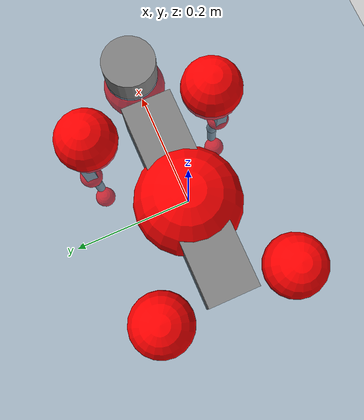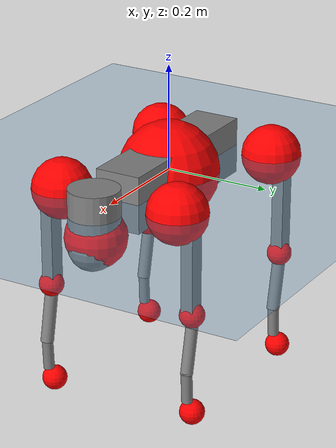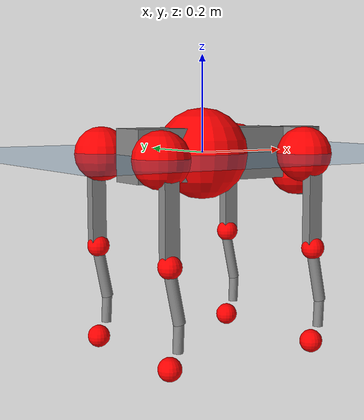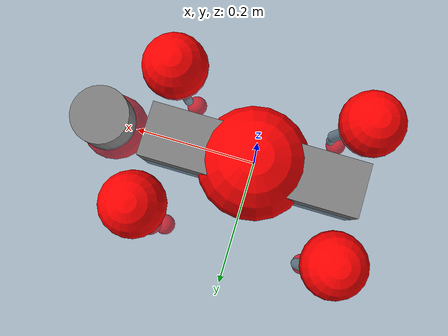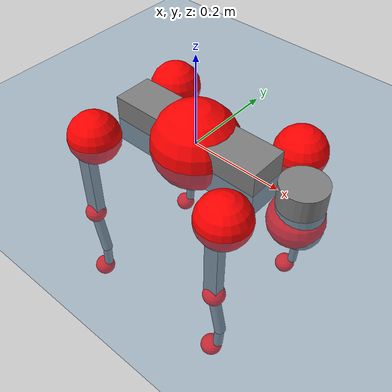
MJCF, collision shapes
<mujoco model="go2">
  <compiler angle="radian" assetdir="assets" balanceinertia="true" inertiafromgeom="false"/>

  <option timestep="0.005" density="1.2" viscosity="2e-05"/>

  <size nkey="1"/>

  <visual>
    <quality shadowsize="8192"/>
    <map shadowclip="0.5"/>
  </visual>

  <default>
    <default class="/">
      <geom contype="0" conaffinity="0" group="1" solref="-1000 -80"/>
      <site size="0.01 0.005 0.005" group="5"/>
      <general forcelimited="true" biastype="affine" gainprm="20" biasprm="0 -20 -0.5"/>
      <default class="go2">
        <joint armature="0.01" damping="0.01" frictionloss="0.2"/>
        <geom condim="1" margin="0.001"/>
        <default class="visual">
          <geom type="mesh" group="2"/>
        </default>
        <default class="collision">
          <geom group="3"/>
          <default class="foot">
            <geom size="0.022 0 0" condim="6" priority="1" friction="0.8 0.02 0.01" solimp="0.015 1 0.022"/>
          </default>
        </default>
        <default class="reward_collision_sphere">
          <geom group="5" rgba="1 0 0 1"/>
        </default>
      </default>
    </default>
  </default>

  <asset>
    <texture type="skybox" colorspace="auto" name="//unnamed_texture_0" builtin="gradient" rgb1="0.95 0.95 0.95" rgb2="0.95 0.95 0.95" width="100" height="600"/>
    <texture type="2d" colorspace="auto" name="texplane" builtin="checker" rgb1="0.345 0.575 0.748" rgb2="0.345 0.575 0.748" markrgb="1 1 1" width="512" height="512"/>
    <material name="MatPlane" class="/" texture="texplane" texuniform="true" texrepeat="2 2" specular="0.9"/>
    <material name="metal" class="/" rgba="0.9 0.95 0.95 1"/>
    <material name="black" class="/" rgba="0 0 0 1"/>
    <material name="white" class="/"/>
    <material name="gray" class="/" rgba="0.671705 0.692426 0.77427 1"/>
    <mesh name="base_0" class="/" file="base_0.obj"/>
    <mesh name="base_1" class="/" file="base_1.obj"/>
    <mesh name="base_2" class="/" file="base_2.obj"/>
    <mesh name="base_3" class="/" file="base_3.obj"/>
    <mesh name="base_4" class="/" file="base_4.obj"/>
    <mesh name="hip_0" class="/" file="hip_0.obj"/>
    <mesh name="hip_1" class="/" file="hip_1.obj"/>
    <mesh name="thigh_0" class="/" file="thigh_0.obj"/>
    <mesh name="thigh_1" class="/" file="thigh_1.obj"/>
    <mesh name="thigh_mirror_0" class="/" file="thigh_mirror_0.obj"/>
    <mesh name="thigh_mirror_1" class="/" file="thigh_mirror_1.obj"/>
    <mesh name="calf_0" class="/" file="calf_0.obj"/>
    <mesh name="calf_1" class="/" file="calf_1.obj"/>
    <mesh name="calf_mirror_0" class="/" file="calf_mirror_0.obj"/>
    <mesh name="calf_mirror_1" class="/" file="calf_mirror_1.obj"/>
    <mesh name="foot" class="/" file="foot.obj"/>
  </asset>

  <worldbody>
    <geom name="floor" class="/" size="100 100 0.125" type="plane" group="0" material="MatPlane"/>
    <light name="toplight_shadow" class="/" pos="0 0 5" dir="0.0990148 0.0990148 -0.990148" type="directional" ambient="0.04 0.04 0.04" diffuse="0.55 0.55 0.55" specular="0.12 0.12 0.12"/>
    <light name="toplight_fill" class="/" pos="0 0 5" dir="0.0990148 0.0990148 -0.990148" type="directional" castshadow="false" ambient="0.04 0.04 0.04" diffuse="0.3 0.3 0.3" specular="0.08 0.08 0.08"/>
    <body name="trunk" childclass="go2" pos="-0.00016075 4.65588e-05 -0.00204928" quat="1 6.80081e-05 -0.000224745 -0.000148555">
      <inertial pos="0.0186432 0.00258142 -0.00256052" quat="-0.000370494 0.713056 -0.00160397 0.701105" mass="5.68434" diaginertia="0.0593609 0.112621 0.0155006"/>
      <joint name="//unnamed_joint_0" type="free" armature="0" damping="0" frictionloss="0"/>
      <geom name="//unnamed_geom_1" class="visual" material="black" mesh="base_0"/>
      <geom name="//unnamed_geom_2" class="visual" material="black" mesh="base_1"/>
      <geom name="//unnamed_geom_3" class="visual" material="black" mesh="base_2"/>
      <geom name="//unnamed_geom_4" class="visual" material="white" mesh="base_3"/>
      <geom name="//unnamed_geom_5" class="visual" material="gray" mesh="base_4"/>
      <geom name="trunk_1" class="collision" size="0.177416 0.0440947 0.0537626" type="box"/>
      <geom name="trunk_2" class="collision" size="0.0471602 0.0424441" pos="0.252047 0 0.00915573" type="cylinder"/>
      <geom name="trunk_3" class="collision" size="0.0443305" pos="0.259122 0 -0.0549344"/>
      <geom name="//unnamed_geom_9" class="reward_collision_sphere" size="0.0943203"/>
      <geom name="//unnamed_geom_10" class="reward_collision_sphere" size="0.0565922" pos="0.247625 0 -0.0412008"/>
      <site name="imu" pos="-0.0252412 -0.00507929 0.0371492" size="0.00943203"/>
      <camera name="track" pos="0 -2.05932 0" quat="0.707107 0.707107 0 0" mode="trackcom"/>
      <camera name="ego_camera" pos="0.275925 0 0.0412008" quat="-0.5 -0.5 0.5 0.5"/>
      <body name="FL_hip" pos="0.170502 0.0469163 0.000344615" quat="1 0.00018271 -0.000173802 1.87385e-05">
        <inertial pos="-0.00729597 0.00166817 -0.00106731" quat="0.498861 0.496047 0.505874 0.499165" mass="0.582161" diaginertia="0.00048338 0.000689526 0.000316682"/>
        <joint name="FL_hip_joint" pos="0 0 0" axis="0.999984 0.00391198 -0.00419721" stiffness="0.00126047" range="-1.04951 1.05298" armature="0.0101263" damping="0.0102935" frictionloss="0.16451"/>
        <geom name="//unnamed_geom_11" class="visual" material="metal" mesh="hip_0"/>
        <geom name="//unnamed_geom_12" class="visual" material="gray" mesh="hip_1"/>
        <geom name="//unnamed_geom_13" class="collision" size="0.0433873 0.0188641" pos="0 0.082373 0" quat="0.707107 0.707107 0 0" type="cylinder"/>
        <geom name="//unnamed_geom_14" class="reward_collision_sphere" size="0.0565922" pos="0 0.0720764 0"/>
        <body name="FL_thigh" pos="-0.00194443 0.0986823 0.00251906" quat="1 -0.000126155 2.86119e-05 -0.000157754">
          <inertial pos="-0.00438232 -0.0226335 -0.030692" quat="0.829978 0.0823352 -0.0208788 0.551291" mass="0.92193" diaginertia="0.00321621 0.00672728 0.000528057"/>
          <joint name="FL_thigh_joint" pos="0 0 0" axis="0.0042856 0.999941 0.0099718" stiffness="0.00194132" range="-1.60238 3.49826" armature="0.00906846" damping="0.0112667" frictionloss="0.186866"/>
          <geom name="//unnamed_geom_15" class="visual" material="metal" mesh="thigh_0"/>
          <geom name="//unnamed_geom_16" class="visual" material="gray" mesh="thigh_1"/>
          <geom name="//unnamed_geom_17" class="collision" size="0.100451 0.0115542 0.0160345" pos="0 0 -0.0975085" quat="0.707107 0 0.707107 0" type="box"/>
          <body name="FL_calf" pos="-0.00220372 0.00112621 -0.192917" quat="0.999999 0.000375659 -0.000410113 0.00131429">
            <inertial pos="0.00532523 -0.000569358 -0.128747" quat="0.710793 0.00131657 -0.00377475 0.70339" mass="0.197868" diaginertia="0.000806385 0.00165532 3.33302e-05"/>
            <joint name="FL_calf_joint" pos="0 0 0" axis="0.00980065 0.999951 0.00126273" range="-2.73153 -0.81997" armature="0.0094022" damping="0.0143705" frictionloss="0.169315"/>
            <geom name="//unnamed_geom_18" class="visual" material="gray" mesh="calf_0"/>
            <geom name="//unnamed_geom_19" class="visual" material="black" mesh="calf_1"/>
            <geom name="FL_calf0" class="collision" size="0.0113184 0.0565922" pos="0.00707499 0 -0.0549344" quat="0.994493 0 -0.104807 0" type="cylinder"/>
            <geom name="//unnamed_geom_21" class="collision" size="0.0103752 0.0306541" pos="0.0176875 0 -0.135505" quat="0.999688 0 0.0249974 0" type="cylinder"/>
            <geom name="//unnamed_geom_22" class="visual" pos="0 0 -0.195017" quat="1 0 0 0" material="black" mesh="foot"/>
            <geom name="FL_foot" class="foot" size="0.0188636" pos="-0.00176875 0 -0.195017"/>
            <geom name="//unnamed_geom_24" class="reward_collision_sphere" size="0.0235801"/>
            <geom name="//unnamed_geom_25" class="reward_collision_sphere" size="0.0235801" pos="-0.00176875 0 -0.195017"/>
            <site name="FL_foot" class="foot" pos="-0.00176875 0 -0.195017" size="0.00943203"/>
          </body>
        </body>
      </body>
      <body name="FR_hip" pos="0.171735 -0.0486963 -0.000885251" quat="0.999999 -0.000397189 0.00116803 -0.000331213">
        <inertial pos="-0.00479105 -0.00191338 0.000717814" quat="0.49899 0.504585 0.499307 0.497088" mass="0.544152" diaginertia="0.00046085 0.000661285 0.000308479"/>
        <joint name="FR_hip_joint" pos="0 0 0" axis="0.999995 0.00282988 0.00165145" stiffness="0.00563316" range="-1.00258 0.994764" armature="0.00928515" damping="0.0132291" frictionloss="0.173494"/>
        <geom name="//unnamed_geom_26" class="visual" pos="0 9.93901e-10 4.26305e-08" quat="4.63268e-05 1 0 0" material="metal" mesh="hip_0"/>
        <geom name="//unnamed_geom_27" class="visual" pos="0 1.61123e-09 -1.05441e-07" quat="4.63268e-05 1 0 0" material="gray" mesh="hip_1"/>
        <geom name="//unnamed_geom_28" class="collision" size="0.0433873 0.0188641" pos="0 -0.082373 0" quat="0.707107 0.707107 0 0" type="cylinder"/>
        <geom name="//unnamed_geom_29" class="reward_collision_sphere" size="0.0565922" pos="0 -0.0720764 0"/>
        <body name="FR_thigh" pos="0.0030386 -0.0965432 0.000449638" quat="1 6.27473e-06 -7.51278e-05 -0.000246736">
          <inertial pos="-0.0028104 0.0238515 -0.0298956" quat="0.55103 -0.0207375 0.0860041 0.829782" mass="0.990352" diaginertia="0.00321004 0.00696993 0.000576236"/>
          <joint name="FR_thigh_joint" pos="0 0 0" axis="-0.00260258 -0.999961 -0.00839601" stiffness="0.00163653" range="-3.43956 1.51425" armature="0.00964412" damping="0" frictionloss="0.198821"/>
          <geom name="//unnamed_geom_30" class="visual" material="metal" mesh="thigh_mirror_0"/>
          <geom name="//unnamed_geom_31" class="visual" material="gray" mesh="thigh_mirror_1"/>
          <geom name="//unnamed_geom_32" class="collision" size="0.100451 0.0115542 0.0160345" pos="0 0 -0.0975085" quat="0.707107 0 0.707107 0" type="box"/>
          <body name="FR_calf" pos="0.00263058 -0.000504725 -0.193487" quat="1 0.000361813 0.000338441 0.000201976">
            <inertial pos="0.00583143 0.00186162 -0.127103" quat="0.702188 -0.00560875 -0.00223861 0.711966" mass="0.19537" diaginertia="0.000815797 0.00167568 3.38276e-05"/>
            <joint name="FR_calf_joint" pos="0 0 0" axis="-0.00187894 -0.999966 -0.00800952" range="0.820938 2.66972" armature="0.00945006" damping="0.0162398" frictionloss="0.164513"/>
            <geom name="//unnamed_geom_33" class="visual" material="gray" mesh="calf_mirror_0"/>
            <geom name="//unnamed_geom_34" class="visual" material="black" mesh="calf_mirror_1"/>
            <geom name="FR_calf0" class="collision" size="0.0122616 0.0565922" pos="0.00884374 0 -0.0549344" quat="0.995004 0 -0.0998334 0" type="cylinder"/>
            <geom name="//unnamed_geom_36" class="collision" size="0.0103752 0.0306541" pos="0.0176875 0 -0.135505" quat="0.999688 0 0.0249974 0" type="cylinder"/>
            <geom name="//unnamed_geom_37" class="visual" pos="0 0 -0.195017" quat="1 0 0 0" material="black" mesh="foot"/>
            <geom name="FR_foot" class="foot" size="0.022635" pos="-0.00176875 0 -0.195017"/>
            <geom name="//unnamed_geom_39" class="reward_collision_sphere" size="0.0235801"/>
            <geom name="//unnamed_geom_40" class="reward_collision_sphere" size="0.0235801" pos="-0.00176875 0 -0.195017"/>
            <site name="FR_foot" class="foot" pos="-0.00176875 0 -0.195017" size="0.00943203"/>
          </body>
        </body>
      </body>
      <body name="RL_hip" pos="-0.169667 0.0505154 -0.00107348" quat="1 -0.00043621 -0.00076874 -0.00032745">
        <inertial pos="0.00409835 -0.000243825 -0.00108677" quat="0.514032 0.49838 0.496744 0.490544" mass="0.550629" diaginertia="0.000474483 0.000704105 0.000307711"/>
        <joint name="RL_hip_joint" pos="0 0 0" axis="-0.99971 -0.0139381 0.019655" range="-1.06873 1.03252" armature="0.00947971" damping="0.00298174" frictionloss="0.195915"/>
        <geom name="//unnamed_geom_41" class="visual" pos="2.71792e-10 0 5.32775e-08" quat="4.63268e-05 0 1 0" material="metal" mesh="hip_0"/>
        <geom name="//unnamed_geom_42" class="visual" pos="4.40607e-10 0 4.72495e-08" quat="4.63268e-05 0 1 0" material="gray" mesh="hip_1"/>
        <geom name="//unnamed_geom_43" class="collision" size="0.0433873 0.0188641" pos="0 0.082373 0" quat="0.707107 0.707107 0 0" type="cylinder"/>
        <geom name="//unnamed_geom_44" class="reward_collision_sphere" size="0.0565922" pos="0 0.0720764 0"/>
        <body name="RL_thigh" pos="-0.000397278 0.0955625 -0.000398297" quat="1 -0.00028491 -0.000421804 7.25938e-05">
          <inertial pos="-0.00274504 -0.0247067 -0.0299566" quat="0.829898 0.0839149 -0.0197725 0.551214" mass="0.968581" diaginertia="0.00336973 0.00689932 0.000588923"/>
          <joint name="RL_thigh_joint" pos="0 0 0" axis="-0.0117246 0.999929 -0.0022256" stiffness="0.00762216" range="-0.526531 4.53523" armature="0.00928346" damping="0.00593198" frictionloss="0.190809"/>
          <geom name="//unnamed_geom_45" class="visual" material="metal" mesh="thigh_0"/>
          <geom name="//unnamed_geom_46" class="visual" material="gray" mesh="thigh_1"/>
          <geom name="//unnamed_geom_47" class="collision" size="0.100451 0.0115542 0.0160345" pos="0 0 -0.0975085" quat="0.707107 0 0.707107 0" type="box"/>
          <body name="RL_calf" pos="0.00260712 0.000235253 -0.195473" quat="0.999999 0.000753276 -7.94764e-05 -0.00111791">
            <inertial pos="0.00792274 0.000198308 -0.13133" quat="0.710554 0.00164699 -0.0049241 0.703624" mass="0.201674" diaginertia="0.000838465 0.00180513 3.63146e-05"/>
            <joint name="RL_calf_joint" pos="0 0 0" axis="0.00127204 0.999849 0.0173072" range="-2.7255 -0.884372" armature="0.00945702" damping="0.00903647" frictionloss="0.194073"/>
            <geom name="//unnamed_geom_48" class="visual" material="gray" mesh="calf_0"/>
            <geom name="//unnamed_geom_49" class="visual" material="black" mesh="calf_1"/>
            <geom name="RL_calf0" class="collision" size="0.0122616 0.0565922" pos="0.00884374 0 -0.0549344" quat="0.995004 0 -0.0998334 0" type="cylinder"/>
            <geom name="//unnamed_geom_51" class="collision" size="0.0103752 0.0306541" pos="0.0176875 0 -0.135505" quat="0.999688 0 0.0249974 0" type="cylinder"/>
            <geom name="//unnamed_geom_52" class="visual" pos="0 0 -0.195017" quat="1 0 0 0" material="black" mesh="foot"/>
            <geom name="RL_foot" class="foot" size="0.016409" pos="-0.00176875 0 -0.195017"/>
            <geom name="//unnamed_geom_54" class="reward_collision_sphere" size="0.0235801"/>
            <geom name="//unnamed_geom_55" class="reward_collision_sphere" size="0.0235801" pos="-0.00176875 0 -0.195017"/>
            <site name="RL_foot" class="foot" pos="-0.00176875 0 -0.195017" size="0.00943203"/>
          </body>
        </body>
      </body>
      <body name="RR_hip" pos="-0.170576 -0.0465458 -0.00183179" quat="0.999999 -0.000546546 -0.00107944 0.000425066">
        <inertial pos="0.00352278 -0.00132043 -6.71563e-05" quat="0.500717 0.489714 0.50799 0.501407" mass="0.563365" diaginertia="0.000476821 0.000669773 0.000301305"/>
        <joint name="RR_hip_joint" pos="0 0 0" axis="-1 -0.000808861 -0.000271298" range="-1.10005 1.02461" armature="0.00805951" damping="0.00590694" frictionloss="0.202945"/>
        <geom name="//unnamed_geom_56" class="visual" pos="-2.66762e-10 9.93901e-10 1.0647e-08" quat="2.14617e-09 4.63268e-05 4.63268e-05 -1" material="metal" mesh="hip_0"/>
        <geom name="//unnamed_geom_57" class="visual" pos="-4.53048e-10 1.61123e-09 1.52691e-07" quat="2.14617e-09 4.63268e-05 4.63268e-05 -1" material="gray" mesh="hip_1"/>
        <geom name="//unnamed_geom_58" class="collision" size="0.0433873 0.0188641" pos="0 -0.082373 0" quat="0.707107 0.707107 0 0" type="cylinder"/>
        <geom name="//unnamed_geom_59" class="reward_collision_sphere" size="0.0565922" pos="0 -0.0720764 0"/>
        <body name="RR_thigh" pos="0.000442684 -0.0987732 -0.00299671" quat="1 -1.86295e-06 -6.6344e-07 -4.40027e-07">
          <inertial pos="-0.00328254 0.0255809 -0.0288651" quat="0.546398 -0.0199196 0.0748717 0.833935" mass="0.938753" diaginertia="0.00310217 0.00650699 0.000548547"/>
          <joint name="RR_thigh_joint" pos="0 0 0" axis="0.000170014 -0.999999 0.00139032" stiffness="0.00816542" range="-4.5396 0.469113" armature="0.0107703" damping="0.0121334" frictionloss="0.1815"/>
          <geom name="//unnamed_geom_60" class="visual" material="metal" mesh="thigh_mirror_0"/>
          <geom name="//unnamed_geom_61" class="visual" material="gray" mesh="thigh_mirror_1"/>
          <geom name="//unnamed_geom_62" class="collision" size="0.100451 0.0115542 0.0160345" pos="0 0 -0.0975085" quat="0.707107 0 0.707107 0" type="box"/>
          <body name="RR_calf" pos="-0.000931997 -0.00286456 -0.195689" quat="0.999999 -0.00104031 -0.000278818 0.000516939">
            <inertial pos="0.00592406 0.000195312 -0.129558" quat="0.71135 -0.00601491 -0.00603467 0.702787" mass="0.19396" diaginertia="0.000789004 0.0016961 3.49668e-05"/>
            <joint name="RR_calf_joint" pos="0 0 0" axis="0.0049725 -0.999955 -0.00804386" stiffness="0.0111147" range="0.886575 2.7792" armature="0.00923534" damping="0.015676" frictionloss="0.181289"/>
            <geom name="//unnamed_geom_63" class="visual" material="gray" mesh="calf_mirror_0"/>
            <geom name="//unnamed_geom_64" class="visual" material="black" mesh="calf_mirror_1"/>
            <geom name="RR_calf0" class="collision" size="0.0122616 0.0565922" pos="0.00884374 0 -0.0549344" quat="0.995004 0 -0.0998334 0" type="cylinder"/>
            <geom name="//unnamed_geom_66" class="collision" size="0.0103752 0.0306541" pos="0.0176875 0 -0.135505" quat="0.999688 0 0.0249974 0" type="cylinder"/>
            <geom name="//unnamed_geom_67" class="visual" pos="0 0 -0.195017" quat="1 0 0 0" material="black" mesh="foot"/>
            <geom name="RR_foot" class="foot" size="0.0202334" pos="-0.00176875 0 -0.195017"/>
            <geom name="//unnamed_geom_69" class="reward_collision_sphere" size="0.0235801"/>
            <geom name="//unnamed_geom_70" class="reward_collision_sphere" size="0.0235801" pos="-0.00176875 0 -0.195017"/>
            <site name="RR_foot" class="foot" pos="-0.00176875 0 -0.195017" size="0.00943203"/>
          </body>
        </body>
      </body>
    </body>
  </worldbody>

  <contact>
    <pair class="/" geom1="floor" geom2="FL_foot" name="//unnamed_contact_0"/>
    <pair class="/" geom1="floor" geom2="FR_foot" name="//unnamed_contact_1"/>
    <pair class="/" geom1="floor" geom2="RL_foot" name="//unnamed_contact_2"/>
    <pair class="/" geom1="floor" geom2="RR_foot" name="//unnamed_contact_3"/>
  </contact>

  <actuator>
    <general name="FL_hip" class="/" joint="FL_hip_joint" forcerange="-21.372 21.372" gainprm="20.242" biasprm="0 -20.242 -0.471179"/>
    <general name="FL_thigh" class="/" joint="FL_thigh_joint" forcerange="-20.2482 20.2482" gainprm="20.242" biasprm="0 -20.242 -0.471179"/>
    <general name="FL_calf" class="/" joint="FL_calf_joint" forcerange="-41.1596 41.1596" gainprm="20.242" biasprm="0 -20.242 -0.471179"/>
    <general name="FR_hip" class="/" joint="FR_hip_joint" forcerange="-22.9798 22.9798" gainprm="20.242" biasprm="0 -20.242 -0.471179"/>
    <general name="FR_thigh" class="/" joint="FR_thigh_joint" forcerange="-21.9356 21.9356" gainprm="20.242" biasprm="0 -20.242 -0.471179"/>
    <general name="FR_calf" class="/" joint="FR_calf_joint" forcerange="-42.2456 42.2456" gainprm="20.242" biasprm="0 -20.242 -0.471179"/>
    <general name="RL_hip" class="/" joint="RL_hip_joint" forcerange="-23.8546 23.8546" gainprm="20.242" biasprm="0 -20.242 -0.471179"/>
    <general name="RL_thigh" class="/" joint="RL_thigh_joint" forcerange="-22.4144 22.4144" gainprm="20.242" biasprm="0 -20.242 -0.471179"/>
    <general name="RL_calf" class="/" joint="RL_calf_joint" forcerange="-41.5192 41.5192" gainprm="20.242" biasprm="0 -20.242 -0.471179"/>
    <general name="RR_hip" class="/" joint="RR_hip_joint" forcerange="-20.1806 20.1806" gainprm="20.242" biasprm="0 -20.242 -0.471179"/>
    <general name="RR_thigh" class="/" joint="RR_thigh_joint" forcerange="-23.1458 23.1458" gainprm="20.242" biasprm="0 -20.242 -0.471179"/>
    <general name="RR_calf" class="/" joint="RR_calf_joint" forcerange="-44.2967 44.2967" gainprm="20.242" biasprm="0 -20.242 -0.471179"/>
  </actuator>

  <sensor>
    <gyro site="imu" name="imu_angular_velocity"/>
    <velocimeter site="imu" name="imu_linear_velocity"/>
    <framelinvel objtype="site" objname="FL_foot" name="FL_foot_global_linear_velocity"/>
    <framelinvel objtype="site" objname="FR_foot" name="FR_foot_global_linear_velocity"/>
    <framelinvel objtype="site" objname="RL_foot" name="RL_foot_global_linear_velocity"/>
    <framelinvel objtype="site" objname="RR_foot" name="RR_foot_global_linear_velocity"/>
  </sensor>

  <keyframe>
    <key name="home" qpos="0 0 0.325 1 0 0 0 0.1 0.8 -1.5 -0.1 -0.8 1.5 -0.1 0.8 -1.5 0.1 -0.8 1.5"/>
  </keyframe>
</mujoco>
